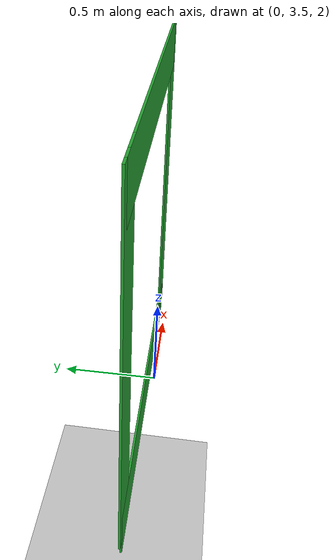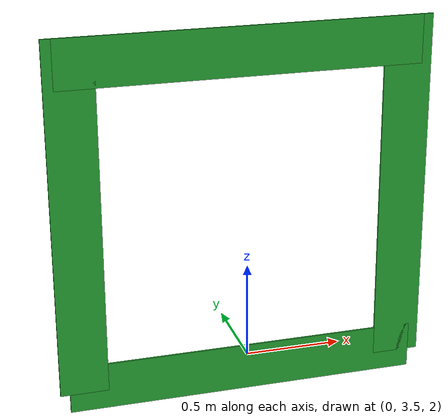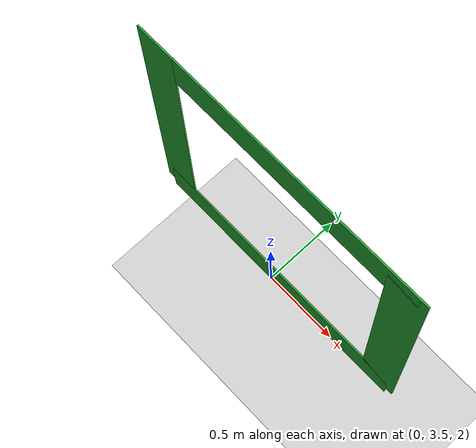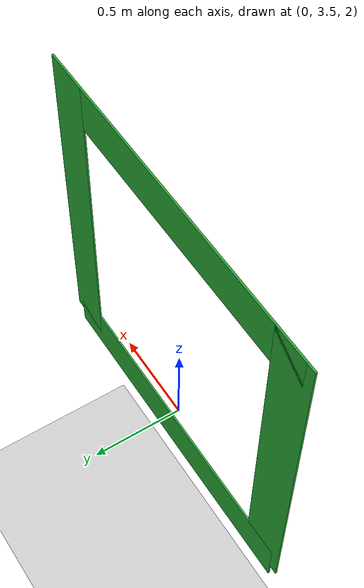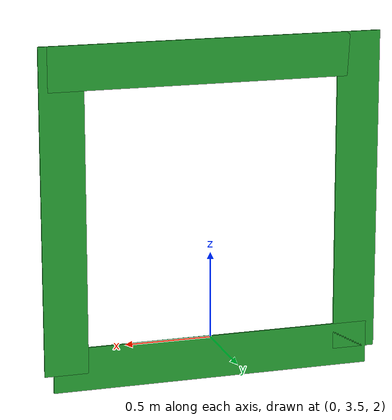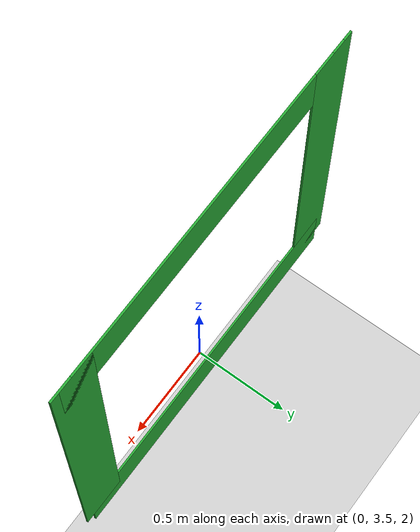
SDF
<sdf version="1.6">
 <world name="default">
  <light name="sun" type="directional">
   <pose>0 0 10 0 -0 0</pose>
   <diffuse>0.8 0.8 0.8 1</diffuse>
   <specular>0.1 0.1 0.1 1</specular>
   <attenuation>
    <range>1000</range>
    <constant>0.9</constant>
    <linear>0.01</linear>
    <quadratic>0.001</quadratic>
   </attenuation>
   <direction>-0.5 0.5 -1</direction>
  </light>
  <model name="ground_plane">
   <static>1</static>
   <link name="link">
    <collision name="collision">
     <geometry><plane><normal>0 0 1</normal><size>100 100</size></plane></geometry>
     <surface><friction><ode><mu>100</mu><mu2>50</mu2></ode></friction></surface>
    </collision>
    <visual name="visual">
     <cast_shadows>0</cast_shadows>
     <geometry><plane><normal>0 0 1</normal><size>100 100</size></plane></geometry>
     <material>
      <script><uri>file://media/materials/scripts/gazebo.material</uri><name>Gazebo/Grey</name></script>
     </material>
    </visual>
   </link>
  </model>
  <gravity>0 0 -9.8</gravity>
  <magnetic_field>6e-06 2.3e-05 -4.2e-05</magnetic_field>
  <atmosphere type="adiabatic"/>
  <physics name="default_physics" default="0" type="ode">
   <max_step_size>0.001</max_step_size>
   <real_time_factor>1</real_time_factor>
   <real_time_update_rate>1000</real_time_update_rate>
  </physics>
  <scene><ambient>0.4 0.4 0.4 1</ambient><background>0.7 0.7 0.7 1</background><shadows>1</shadows></scene>
  <spherical_coordinates>
   <surface_model>EARTH_WGS84</surface_model>
   <latitude_deg>51.9906361</latitude_deg>
   <longitude_deg>4.3767874</longitude_deg>
   <elevation>45.110</elevation>
   <heading_deg>180</heading_deg>
  </spherical_coordinates>
  <model name="paper_back0">
   <pose>0 3.55 1.9 0 0 0</pose>
   <static>true</static>
   <link name="link">
    <collision name="collision"><geometry><box><size>0.1 0.01 0.1</size></box></geometry></collision>
    <visual name="visual">
     <geometry><box><size>1.85 0.01 0.25</size></box></geometry>
     <material><script><name>Gazebo/Green</name></script></material>
    </visual>
   </link>
  </model>
  <model name="paper_back1">
   <pose>0.85 3.55 2.8 0 1.57 0</pose>
   <static>true</static>
   <link name="link">
    <collision name="collision"><geometry><box><size>0.1 0.01 0.1</size></box></geometry></collision>
    <visual name="visual">
     <geometry><box><size>1.85 0.01 0.25</size></box></geometry>
     <material><script><name>Gazebo/Green</name></script></material>
    </visual>
   </link>
  </model>
  <model name="paper_back2">
   <pose>-0.85 3.55 2.8 0 1.57 0</pose>
   <static>true</static>
   <link name="link">
    <collision name="collision"><geometry><box><size>0.1 0.01 0.1</size></box></geometry></collision>
    <visual name="visual">
     <geometry><box><size>1.85 0.01 0.25</size></box></geometry>
     <material><script><name>Gazebo/Green</name></script></material>
    </visual>
   </link>
  </model>
  <model name="paper_back3">
   <pose>0 3.55 3.6 0 0 0</pose>
   <static>true</static>
   <link name="link">
    <collision name="collision"><geometry><box><size>0.1 0.01 0.1</size></box></geometry></collision>
    <visual name="visual">
     <geometry><box><size>1.85 0.01 0.25</size></box></geometry>
     <material><script><name>Gazebo/Green</name></script></material>
    </visual>
   </link>
  </model>
  <model name="irlock_beacon_01">
   <pose>1.0 -1.0 0.005 0 0 0</pose>
   <link name="link">
    <inertial>
     <mass>3.0</mass>
     <inertia><ixx>0.019</ixx><ixy>0</ixy><ixz>0</ixz><iyy>0.01</iyy><iyz>0</iyz><izz>0.01</izz></inertia>
    </inertial>
    <collision name="collision">
     <geometry><box><size>1.0 1.0 0.02</size></box></geometry>
     <surface>
      <friction><ode><mu>1.0</mu><mu2>1.0</mu2><fdir1>1 0 0</fdir1></ode></friction>
      <contact><ode><kp>1e+12</kp><kd>1</kd><max_vel>10</max_vel><min_depth>0.003</min_depth></ode></contact>
     </surface>
    </collision>
   </link>
  </model>
 </world>
</sdf>
